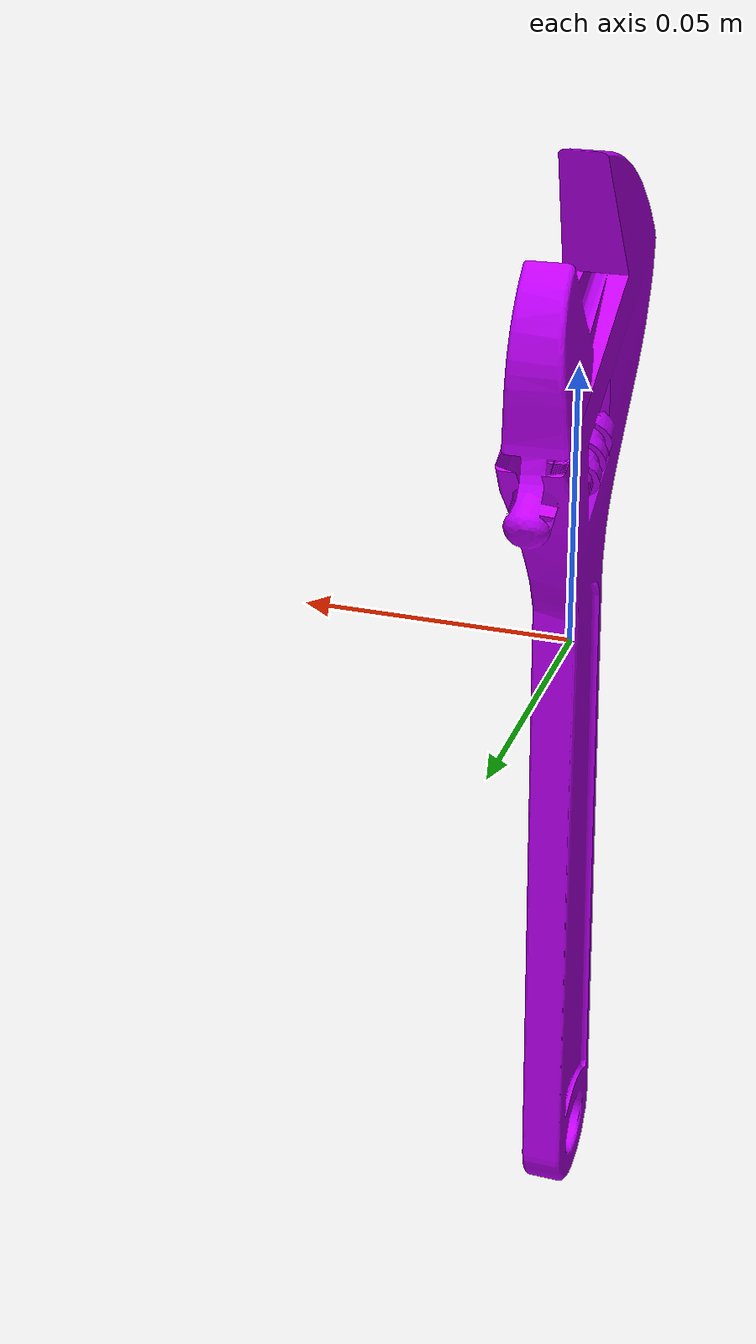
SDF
<?xml version="1.0"?>
<sdf version="1.7">
  <model name="adjustable_wrench_200mm_bright">
    <pose>0 0 0 0 0 0</pose>
    <static>false</static>
    <link name="link">
      <!-- link frame = tool CoM; Z = long axis (+ toward tool end), X = forward, Y = Z x X -->
      <inertial>
        <pose>0 0 0 0 0 0</pose>
        <mass>0.320303</mass>
        <inertia>
          <ixx>1.154076e-03</ixx>
          <ixy>2.614189e-10</ixy>
          <ixz>9.589250e-10</ixz>
          <iyy>1.107718e-03</iyy>
          <iyz>-2.215437e-07</iyz>
          <izz>5.066222e-05</izz>
        </inertia>
      </inertial>
      <collision name="collision">
        <geometry>
          <mesh>
            <uri>model://adjustable_wrench_200mm/meshes/adjustable_wrench_200mm.dae</uri>
          </mesh>
        </geometry>
      </collision>
      <visual name="visual">
        <geometry>
          <mesh>
            <uri>model://adjustable_wrench_200mm/meshes/adjustable_wrench_200mm.dae</uri>
          </mesh>
        </geometry>
        <material>
          <ambient>0.346 0.000 0.450 1.0</ambient>
          <diffuse>0.770 0.000 1.000 1.0</diffuse>
          <specular>0.85 0.85 0.85 1.0</specular>
          <emissive>0 0 0 1.0</emissive>
        </material>
      </visual>
    </link>
  </model>
</sdf>
